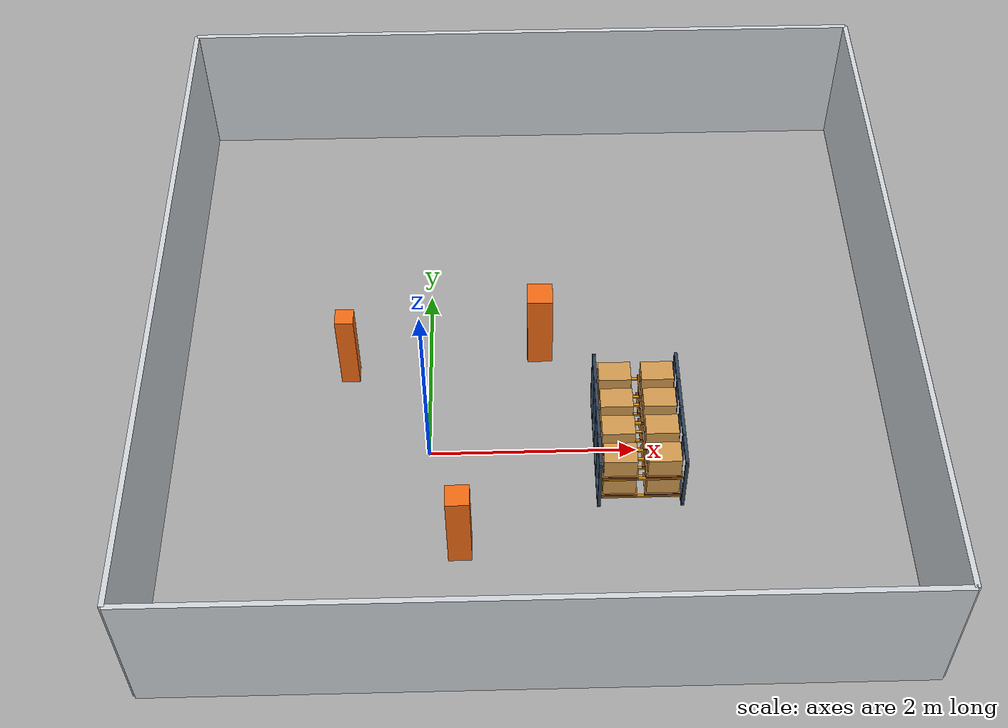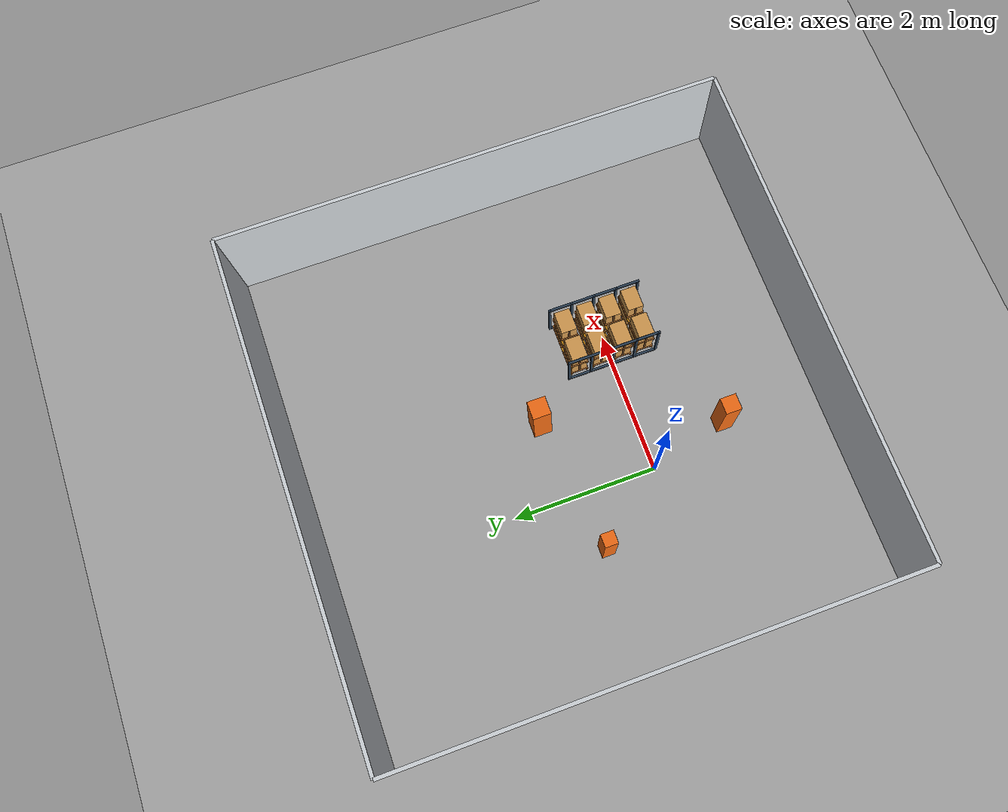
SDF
<?xml version="1.0"?>
<sdf version="1.9">
  <world name="warehouse">
    <physics name="warehouse_physics" type="dart">
      <!-- 200 Hz is sufficient for this slow mobile robot while leaving more
           CPU time for the RGB-D sensor and RViz under WSL. -->
      <max_step_size>0.005</max_step_size>
      <real_time_factor>1.0</real_time_factor>
      <dart>
        <collision_detector>bullet</collision_detector>
      </dart>
    </physics>

    <plugin filename="gz-sim-physics-system"
            name="gz::sim::systems::Physics"/>
    <plugin filename="gz-sim-user-commands-system"
            name="gz::sim::systems::UserCommands"/>
    <plugin filename="gz-sim-scene-broadcaster-system"
            name="gz::sim::systems::SceneBroadcaster"/>
    <plugin filename="gz-sim-sensors-system"
            name="gz::sim::systems::Sensors">
      <render_engine>ogre</render_engine>
    </plugin>
    <plugin filename="gz-sim-imu-system"
            name="gz::sim::systems::Imu"/>

    <!-- Use a deterministic startup view instead of restoring a stale camera
         aimed only at the rack. This view contains the robot at (0, 0) and
         the rack at (2, 0). -->
    <gui fullscreen="false">
      <plugin name="3D View" filename="GzScene3D">
        <gz-gui>
          <title>3D View</title>
          <property type="bool" key="showTitleBar">0</property>
          <property type="string" key="state">docked</property>
        </gz-gui>
        <engine>ogre2</engine>
        <scene>scene</scene>
        <camera_pose>-3.5 -3.5 3.0 0 0.45 0.75</camera_pose>
      </plugin>
      <plugin name="World control" filename="WorldControl">
        <gz-gui>
          <title>World control</title>
          <property type="bool" key="showTitleBar">0</property>
          <property type="bool" key="resizable">0</property>
          <property type="double" key="height">72</property>
          <property type="double" key="width">121</property>
          <property type="double" key="z">1</property>
          <property type="string" key="state">floating</property>
          <anchors target="3D View">
            <line own="left" target="left"/>
            <line own="bottom" target="bottom"/>
          </anchors>
        </gz-gui>
        <play_pause>1</play_pause>
        <step>1</step>
        <start_paused>0</start_paused>
      </plugin>
      <plugin name="World stats" filename="WorldStats">
        <gz-gui>
          <title>World stats</title>
          <property type="bool" key="showTitleBar">0</property>
          <property type="bool" key="resizable">0</property>
          <property type="double" key="height">110</property>
          <property type="double" key="width">290</property>
          <property type="double" key="z">1</property>
          <property type="string" key="state">floating</property>
          <anchors target="3D View">
            <line own="right" target="right"/>
            <line own="bottom" target="bottom"/>
          </anchors>
        </gz-gui>
        <sim_time>1</sim_time>
        <real_time>1</real_time>
        <real_time_factor>1</real_time_factor>
      </plugin>
      <plugin name="Entity tree" filename="EntityTree"/>
    </gui>

    <gravity>0 0 -9.81</gravity>

    <scene>
      <ambient>0.4 0.4 0.4 1</ambient>
      <background>0.7 0.7 0.7 1</background>
      <shadows>false</shadows>
    </scene>

    <light name="sun" type="directional">
      <cast_shadows>false</cast_shadows>
      <pose>0 0 10 0 0 0</pose>
      <diffuse>0.8 0.8 0.8 1</diffuse>
      <specular>0.2 0.2 0.2 1</specular>
      <direction>-0.5 0.1 -0.9</direction>
    </light>

    <model name="ground_plane">
      <static>true</static>
      <link name="ground_link">
        <collision name="ground_collision">
          <geometry>
            <plane>
              <normal>0 0 1</normal>
              <size>30 30</size>
            </plane>
          </geometry>
          <surface>
            <friction>
              <ode>
                <mu>1.0</mu>
                <mu2>1.0</mu2>
              </ode>
            </friction>
          </surface>
        </collision>
        <visual name="ground_visual">
          <geometry>
            <plane>
              <normal>0 0 1</normal>
              <size>30 30</size>
            </plane>
          </geometry>
          <material>
            <ambient>0.55 0.55 0.55 1</ambient>
            <diffuse>0.65 0.65 0.65 1</diffuse>
          </material>
        </visual>
      </link>
    </model>

    <!-- Physical warehouse boundary, kept as collision geometry for mapping. -->
    <model name="warehouse_walls">
      <static>true</static>
      <link name="walls_link">
        <collision name="west_wall_collision">
          <pose>-2.5 1.0 0.75 0 0 0</pose>
          <geometry><box><size>0.05 7.0 1.5</size></box></geometry>
        </collision>
        <visual name="west_wall_visual">
          <pose>-2.5 1.0 0.75 0 0 0</pose>
          <geometry><box><size>0.05 7.0 1.5</size></box></geometry>
          <material>
            <ambient>0.72 0.74 0.76 1</ambient>
            <diffuse>0.82 0.84 0.86 1</diffuse>
          </material>
        </visual>
        <collision name="east_wall_collision">
          <pose>4.5 1.0 0.75 0 0 0</pose>
          <geometry><box><size>0.05 7.0 1.5</size></box></geometry>
        </collision>
        <visual name="east_wall_visual">
          <pose>4.5 1.0 0.75 0 0 0</pose>
          <geometry><box><size>0.05 7.0 1.5</size></box></geometry>
          <material>
            <ambient>0.72 0.74 0.76 1</ambient>
            <diffuse>0.82 0.84 0.86 1</diffuse>
          </material>
        </visual>
        <collision name="south_wall_collision">
          <pose>1.0 -2.5 0.75 0 0 0</pose>
          <geometry><box><size>7.0 0.05 1.5</size></box></geometry>
        </collision>
        <visual name="south_wall_visual">
          <pose>1.0 -2.5 0.75 0 0 0</pose>
          <geometry><box><size>7.0 0.05 1.5</size></box></geometry>
          <material>
            <ambient>0.72 0.74 0.76 1</ambient>
            <diffuse>0.82 0.84 0.86 1</diffuse>
          </material>
        </visual>
        <collision name="north_wall_collision">
          <pose>1.0 4.5 0.75 0 0 0</pose>
          <geometry><box><size>7.0 0.05 1.5</size></box></geometry>
        </collision>
        <visual name="north_wall_visual">
          <pose>1.0 4.5 0.75 0 0 0</pose>
          <geometry><box><size>7.0 0.05 1.5</size></box></geometry>
          <material>
            <ambient>0.72 0.74 0.76 1</ambient>
            <diffuse>0.82 0.84 0.86 1</diffuse>
          </material>
        </visual>
      </link>
    </model>

    <model name="lidar_test_obstacles">
      <static>true</static>
      <link name="obstacles_link">
        <collision name="left_rear_obstacle_collision">
          <pose>-0.8 1.0 0.45 0 0 0</pose>
          <geometry><box><size>0.18 0.18 0.90</size></box></geometry>
        </collision>
        <visual name="left_rear_obstacle_visual">
          <pose>-0.8 1.0 0.45 0 0 0</pose>
          <geometry><box><size>0.18 0.18 0.90</size></box></geometry>
          <material>
            <ambient>0.85 0.32 0.05 1</ambient>
            <diffuse>0.95 0.42 0.08 1</diffuse>
          </material>
        </visual>
        <collision name="right_side_obstacle_collision">
          <pose>0.3 -1.1 0.45 0 0 0</pose>
          <geometry><box><size>0.22 0.22 0.90</size></box></geometry>
        </collision>
        <visual name="right_side_obstacle_visual">
          <pose>0.3 -1.1 0.45 0 0 0</pose>
          <geometry><box><size>0.22 0.22 0.90</size></box></geometry>
          <material>
            <ambient>0.85 0.32 0.05 1</ambient>
            <diffuse>0.95 0.42 0.08 1</diffuse>
          </material>
        </visual>
        <collision name="rack_side_obstacle_collision">
          <pose>1.1 1.25 0.45 0 0 0</pose>
          <geometry><box><size>0.25 0.25 0.90</size></box></geometry>
        </collision>
        <visual name="rack_side_obstacle_visual">
          <pose>1.1 1.25 0.45 0 0 0</pose>
          <geometry><box><size>0.25 0.25 0.90</size></box></geometry>
          <material>
            <ambient>0.85 0.32 0.05 1</ambient>
            <diffuse>0.95 0.42 0.08 1</diffuse>
          </material>
        </visual>
      </link>
    </model>

    <include>
      <uri>model://warehouse_rack_4x2_double</uri>
      <name>warehouse_rack</name>
      <pose>2.0 0 0 0 0 0</pose>
    </include>

    <!-- Front face: aisle is on the negative-X side of the rack. -->
    <include>
      <uri>model://warehouse_pallet_box</uri>
      <name>pallet_front_l1_c1</name>
      <pose>1.795 -0.480 0.091 0 0 0</pose>
    </include>
    <include>
      <uri>model://warehouse_pallet_box</uri>
      <name>pallet_front_l1_c2</name>
      <pose>1.795 -0.160 0.091 0 0 0</pose>
    </include>
    <include>
      <uri>model://warehouse_pallet_box</uri>
      <name>pallet_front_l1_c3</name>
      <pose>1.795 0.160 0.091 0 0 0</pose>
    </include>
    <include>
      <uri>model://warehouse_pallet_box</uri>
      <name>pallet_front_l1_c4</name>
      <pose>1.795 0.480 0.091 0 0 0</pose>
    </include>
    <include>
      <uri>model://warehouse_pallet_box</uri>
      <name>pallet_front_l2_c1</name>
      <pose>1.795 -0.480 0.371 0 0 0</pose>
    </include>
    <include>
      <uri>model://warehouse_pallet_box</uri>
      <name>pallet_front_l2_c2</name>
      <pose>1.795 -0.160 0.371 0 0 0</pose>
    </include>
    <include>
      <uri>model://warehouse_pallet_box</uri>
      <name>pallet_front_l2_c3</name>
      <pose>1.795 0.160 0.371 0 0 0</pose>
    </include>
    <include>
      <uri>model://warehouse_pallet_box</uri>
      <name>pallet_front_l2_c4</name>
      <pose>1.795 0.480 0.371 0 0 0</pose>
    </include>

    <!-- Rear face: aisle is on the positive-X side of the rack. -->
    <include>
      <uri>model://warehouse_pallet_box</uri>
      <name>pallet_rear_l1_c1</name>
      <pose>2.205 -0.480 0.091 0 0 0</pose>
    </include>
    <include>
      <uri>model://warehouse_pallet_box</uri>
      <name>pallet_rear_l1_c2</name>
      <pose>2.205 -0.160 0.091 0 0 0</pose>
    </include>
    <include>
      <uri>model://warehouse_pallet_box</uri>
      <name>pallet_rear_l1_c3</name>
      <pose>2.205 0.160 0.091 0 0 0</pose>
    </include>
    <include>
      <uri>model://warehouse_pallet_box</uri>
      <name>pallet_rear_l1_c4</name>
      <pose>2.205 0.480 0.091 0 0 0</pose>
    </include>
    <include>
      <uri>model://warehouse_pallet_box</uri>
      <name>pallet_rear_l2_c1</name>
      <pose>2.205 -0.480 0.371 0 0 0</pose>
    </include>
    <include>
      <uri>model://warehouse_pallet_box</uri>
      <name>pallet_rear_l2_c2</name>
      <pose>2.205 -0.160 0.371 0 0 0</pose>
    </include>
    <include>
      <uri>model://warehouse_pallet_box</uri>
      <name>pallet_rear_l2_c3</name>
      <pose>2.205 0.160 0.371 0 0 0</pose>
    </include>
    <include>
      <uri>model://warehouse_pallet_box</uri>
      <name>pallet_rear_l2_c4</name>
      <pose>2.205 0.480 0.371 0 0 0</pose>
    </include>
  </world>
</sdf>

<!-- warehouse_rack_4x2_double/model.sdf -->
<sdf version="1.9">
  <model name="warehouse_rack_4x2_double">
    <static>true</static>
    <link name="rack_frame">
      <collision name="front_post_1_collision">
        <pose>-0.3950 -0.6400 0.3400 0.0000 0.0000 0.0000</pose>
        <geometry>
          <box>
            <size>0.0300 0.0300 0.6800</size>
          </box>
        </geometry>
        <surface>
          <friction>
            <ode>
              <mu>0.8</mu>
              <mu2>0.8</mu2>
            </ode>
          </friction>
        </surface>
      </collision>
      <visual name="front_post_1_visual">
        <pose>-0.3950 -0.6400 0.3400 0.0000 0.0000 0.0000</pose>
        <geometry>
          <box>
            <size>0.0300 0.0300 0.6800</size>
          </box>
        </geometry>
        <material>
          <ambient>0.1800 0.2600 0.3400 1.0000</ambient>
          <diffuse>0.1800 0.2600 0.3400 1.0000</diffuse>
        </material>
      </visual>
      <collision name="rear_post_1_collision">
        <pose>0.3950 -0.6400 0.3400 0.0000 0.0000 0.0000</pose>
        <geometry>
          <box>
            <size>0.0300 0.0300 0.6800</size>
          </box>
        </geometry>
        <surface>
          <friction>
            <ode>
              <mu>0.8</mu>
              <mu2>0.8</mu2>
            </ode>
          </friction>
        </surface>
      </collision>
      <visual name="rear_post_1_visual">
        <pose>0.3950 -0.6400 0.3400 0.0000 0.0000 0.0000</pose>
        <geometry>
          <box>
            <size>0.0300 0.0300 0.6800</size>
          </box>
        </geometry>
        <material>
          <ambient>0.1800 0.2600 0.3400 1.0000</ambient>
          <diffuse>0.1800 0.2600 0.3400 1.0000</diffuse>
        </material>
      </visual>
      <collision name="front_post_2_collision">
        <pose>-0.3950 -0.3200 0.3400 0.0000 0.0000 0.0000</pose>
        <geometry>
          <box>
            <size>0.0300 0.0300 0.6800</size>
          </box>
        </geometry>
        <surface>
          <friction>
            <ode>
              <mu>0.8</mu>
              <mu2>0.8</mu2>
            </ode>
          </friction>
        </surface>
      </collision>
      <visual name="front_post_2_visual">
        <pose>-0.3950 -0.3200 0.3400 0.0000 0.0000 0.0000</pose>
        <geometry>
          <box>
            <size>0.0300 0.0300 0.6800</size>
          </box>
        </geometry>
        <material>
          <ambient>0.1800 0.2600 0.3400 1.0000</ambient>
          <diffuse>0.1800 0.2600 0.3400 1.0000</diffuse>
        </material>
      </visual>
      <collision name="rear_post_2_collision">
        <pose>0.3950 -0.3200 0.3400 0.0000 0.0000 0.0000</pose>
        <geometry>
          <box>
            <size>0.0300 0.0300 0.6800</size>
          </box>
        </geometry>
        <surface>
          <friction>
            <ode>
              <mu>0.8</mu>
              <mu2>0.8</mu2>
            </ode>
          </friction>
        </surface>
      </collision>
      <visual name="rear_post_2_visual">
        <pose>0.3950 -0.3200 0.3400 0.0000 0.0000 0.0000</pose>
        <geometry>
          <box>
            <size>0.0300 0.0300 0.6800</size>
          </box>
        </geometry>
        <material>
          <ambient>0.1800 0.2600 0.3400 1.0000</ambient>
          <diffuse>0.1800 0.2600 0.3400 1.0000</diffuse>
        </material>
      </visual>
      <collision name="front_post_3_collision">
        <pose>-0.3950 0.0000 0.3400 0.0000 0.0000 0.0000</pose>
        <geometry>
          <box>
            <size>0.0300 0.0300 0.6800</size>
          </box>
        </geometry>
        <surface>
          <friction>
            <ode>
              <mu>0.8</mu>
              <mu2>0.8</mu2>
            </ode>
          </friction>
        </surface>
      </collision>
      <visual name="front_post_3_visual">
        <pose>-0.3950 0.0000 0.3400 0.0000 0.0000 0.0000</pose>
        <geometry>
          <box>
            <size>0.0300 0.0300 0.6800</size>
          </box>
        </geometry>
        <material>
          <ambient>0.1800 0.2600 0.3400 1.0000</ambient>
          <diffuse>0.1800 0.2600 0.3400 1.0000</diffuse>
        </material>
      </visual>
      <collision name="rear_post_3_collision">
        <pose>0.3950 0.0000 0.3400 0.0000 0.0000 0.0000</pose>
        <geometry>
          <box>
            <size>0.0300 0.0300 0.6800</size>
          </box>
        </geometry>
        <surface>
          <friction>
            <ode>
              <mu>0.8</mu>
              <mu2>0.8</mu2>
            </ode>
          </friction>
        </surface>
      </collision>
      <visual name="rear_post_3_visual">
        <pose>0.3950 0.0000 0.3400 0.0000 0.0000 0.0000</pose>
        <geometry>
          <box>
            <size>0.0300 0.0300 0.6800</size>
          </box>
        </geometry>
        <material>
          <ambient>0.1800 0.2600 0.3400 1.0000</ambient>
          <diffuse>0.1800 0.2600 0.3400 1.0000</diffuse>
        </material>
      </visual>
      <collision name="front_post_4_collision">
        <pose>-0.3950 0.3200 0.3400 0.0000 0.0000 0.0000</pose>
        <geometry>
          <box>
            <size>0.0300 0.0300 0.6800</size>
          </box>
        </geometry>
        <surface>
          <friction>
            <ode>
              <mu>0.8</mu>
              <mu2>0.8</mu2>
            </ode>
          </friction>
        </surface>
      </collision>
      <visual name="front_post_4_visual">
        <pose>-0.3950 0.3200 0.3400 0.0000 0.0000 0.0000</pose>
        <geometry>
          <box>
            <size>0.0300 0.0300 0.6800</size>
          </box>
        </geometry>
        <material>
          <ambient>0.1800 0.2600 0.3400 1.0000</ambient>
          <diffuse>0.1800 0.2600 0.3400 1.0000</diffuse>
        </material>
      </visual>
      <collision name="rear_post_4_collision">
        <pose>0.3950 0.3200 0.3400 0.0000 0.0000 0.0000</pose>
        <geometry>
          <box>
            <size>0.0300 0.0300 0.6800</size>
          </box>
        </geometry>
        <surface>
          <friction>
            <ode>
              <mu>0.8</mu>
              <mu2>0.8</mu2>
            </ode>
          </friction>
        </surface>
      </collision>
      <visual name="rear_post_4_visual">
        <pose>0.3950 0.3200 0.3400 0.0000 0.0000 0.0000</pose>
        <geometry>
          <box>
            <size>0.0300 0.0300 0.6800</size>
          </box>
        </geometry>
        <material>
          <ambient>0.1800 0.2600 0.3400 1.0000</ambient>
          <diffuse>0.1800 0.2600 0.3400 1.0000</diffuse>
        </material>
      </visual>
      <collision name="front_post_5_collision">
        <pose>-0.3950 0.6400 0.3400 0.0000 0.0000 0.0000</pose>
        <geometry>
          <box>
            <size>0.0300 0.0300 0.6800</size>
          </box>
        </geometry>
        <surface>
          <friction>
            <ode>
              <mu>0.8</mu>
              <mu2>0.8</mu2>
            </ode>
          </friction>
        </surface>
      </collision>
      <visual name="front_post_5_visual">
        <pose>-0.3950 0.6400 0.3400 0.0000 0.0000 0.0000</pose>
        <geometry>
          <box>
            <size>0.0300 0.0300 0.6800</size>
          </box>
        </geometry>
        <material>
          <ambient>0.1800 0.2600 0.3400 1.0000</ambient>
          <diffuse>0.1800 0.2600 0.3400 1.0000</diffuse>
        </material>
      </visual>
      <collision name="rear_post_5_collision">
        <pose>0.3950 0.6400 0.3400 0.0000 0.0000 0.0000</pose>
        <geometry>
          <box>
            <size>0.0300 0.0300 0.6800</size>
          </box>
        </geometry>
        <surface>
          <friction>
            <ode>
              <mu>0.8</mu>
              <mu2>0.8</mu2>
            </ode>
          </friction>
        </surface>
      </collision>
      <visual name="rear_post_5_visual">
        <pose>0.3950 0.6400 0.3400 0.0000 0.0000 0.0000</pose>
        <geometry>
          <box>
            <size>0.0300 0.0300 0.6800</size>
          </box>
        </geometry>
        <material>
          <ambient>0.1800 0.2600 0.3400 1.0000</ambient>
          <diffuse>0.1800 0.2600 0.3400 1.0000</diffuse>
        </material>
      </visual>
      <collision name="front_bottom_crossbeam_collision">
        <pose>-0.3950 0.0000 0.0150 0.0000 0.0000 0.0000</pose>
        <geometry>
          <box>
            <size>0.0300 1.3100 0.0300</size>
          </box>
        </geometry>
        <surface>
          <friction>
            <ode>
              <mu>0.8</mu>
              <mu2>0.8</mu2>
            </ode>
          </friction>
        </surface>
      </collision>
      <visual name="front_bottom_crossbeam_visual">
        <pose>-0.3950 0.0000 0.0150 0.0000 0.0000 0.0000</pose>
        <geometry>
          <box>
            <size>0.0300 1.3100 0.0300</size>
          </box>
        </geometry>
        <material>
          <ambient>0.1800 0.2600 0.3400 1.0000</ambient>
          <diffuse>0.1800 0.2600 0.3400 1.0000</diffuse>
        </material>
      </visual>
      <collision name="front_top_crossbeam_collision">
        <pose>-0.3950 0.0000 0.6650 0.0000 0.0000 0.0000</pose>
        <geometry>
          <box>
            <size>0.0300 1.3100 0.0300</size>
          </box>
        </geometry>
        <surface>
          <friction>
            <ode>
              <mu>0.8</mu>
              <mu2>0.8</mu2>
            </ode>
          </friction>
        </surface>
      </collision>
      <visual name="front_top_crossbeam_visual">
        <pose>-0.3950 0.0000 0.6650 0.0000 0.0000 0.0000</pose>
        <geometry>
          <box>
            <size>0.0300 1.3100 0.0300</size>
          </box>
        </geometry>
        <material>
          <ambient>0.1800 0.2600 0.3400 1.0000</ambient>
          <diffuse>0.1800 0.2600 0.3400 1.0000</diffuse>
        </material>
      </visual>
      <collision name="rear_bottom_crossbeam_collision">
        <pose>0.3950 0.0000 0.0150 0.0000 0.0000 0.0000</pose>
        <geometry>
          <box>
            <size>0.0300 1.3100 0.0300</size>
          </box>
        </geometry>
        <surface>
          <friction>
            <ode>
              <mu>0.8</mu>
              <mu2>0.8</mu2>
            </ode>
          </friction>
        </surface>
      </collision>
      <visual name="rear_bottom_crossbeam_visual">
        <pose>0.3950 0.0000 0.0150 0.0000 0.0000 0.0000</pose>
        <geometry>
          <box>
            <size>0.0300 1.3100 0.0300</size>
          </box>
        </geometry>
        <material>
          <ambient>0.1800 0.2600 0.3400 1.0000</ambient>
          <diffuse>0.1800 0.2600 0.3400 1.0000</diffuse>
        </material>
      </visual>
      <collision name="rear_top_crossbeam_collision">
        <pose>0.3950 0.0000 0.6650 0.0000 0.0000 0.0000</pose>
        <geometry>
          <box>
            <size>0.0300 1.3100 0.0300</size>
          </box>
        </geometry>
        <surface>
          <friction>
            <ode>
              <mu>0.8</mu>
              <mu2>0.8</mu2>
            </ode>
          </friction>
        </surface>
      </collision>
      <visual name="rear_top_crossbeam_visual">
        <pose>0.3950 0.0000 0.6650 0.0000 0.0000 0.0000</pose>
        <geometry>
          <box>
            <size>0.0300 1.3100 0.0300</size>
          </box>
        </geometry>
        <material>
          <ambient>0.1800 0.2600 0.3400 1.0000</ambient>
          <diffuse>0.1800 0.2600 0.3400 1.0000</diffuse>
        </material>
      </visual>
      <collision name="level_1_bay_1_left_rail_collision">
        <pose>0.0000 -0.3700 0.0800 0.0000 0.0000 0.0000</pose>
        <geometry>
          <box>
            <size>0.7500 0.0250 0.0200</size>
          </box>
        </geometry>
        <surface>
          <friction>
            <ode>
              <mu>0.8</mu>
              <mu2>0.8</mu2>
            </ode>
          </friction>
        </surface>
      </collision>
      <visual name="level_1_bay_1_left_rail_visual">
        <pose>0.0000 -0.3700 0.0800 0.0000 0.0000 0.0000</pose>
        <geometry>
          <box>
            <size>0.7500 0.0250 0.0200</size>
          </box>
        </geometry>
        <material>
          <ambient>0.8600 0.5800 0.0800 1.0000</ambient>
          <diffuse>0.8600 0.5800 0.0800 1.0000</diffuse>
        </material>
      </visual>
      <collision name="level_1_bay_1_right_rail_collision">
        <pose>0.0000 -0.5900 0.0800 0.0000 0.0000 0.0000</pose>
        <geometry>
          <box>
            <size>0.7500 0.0250 0.0200</size>
          </box>
        </geometry>
        <surface>
          <friction>
            <ode>
              <mu>0.8</mu>
              <mu2>0.8</mu2>
            </ode>
          </friction>
        </surface>
      </collision>
      <visual name="level_1_bay_1_right_rail_visual">
        <pose>0.0000 -0.5900 0.0800 0.0000 0.0000 0.0000</pose>
        <geometry>
          <box>
            <size>0.7500 0.0250 0.0200</size>
          </box>
        </geometry>
        <material>
          <ambient>0.8600 0.5800 0.0800 1.0000</ambient>
          <diffuse>0.8600 0.5800 0.0800 1.0000</diffuse>
        </material>
      </visual>
      <collision name="level_1_bay_2_left_rail_collision">
        <pose>0.0000 -0.0500 0.0800 0.0000 0.0000 0.0000</pose>
        <geometry>
          <box>
            <size>0.7500 0.0250 0.0200</size>
          </box>
        </geometry>
        <surface>
          <friction>
            <ode>
              <mu>0.8</mu>
              <mu2>0.8</mu2>
            </ode>
          </friction>
        </surface>
      </collision>
      <visual name="level_1_bay_2_left_rail_visual">
        <pose>0.0000 -0.0500 0.0800 0.0000 0.0000 0.0000</pose>
        <geometry>
          <box>
            <size>0.7500 0.0250 0.0200</size>
          </box>
        </geometry>
        <material>
          <ambient>0.8600 0.5800 0.0800 1.0000</ambient>
          <diffuse>0.8600 0.5800 0.0800 1.0000</diffuse>
        </material>
      </visual>
      <collision name="level_1_bay_2_right_rail_collision">
        <pose>0.0000 -0.2700 0.0800 0.0000 0.0000 0.0000</pose>
        <geometry>
          <box>
            <size>0.7500 0.0250 0.0200</size>
          </box>
        </geometry>
        <surface>
          <friction>
            <ode>
              <mu>0.8</mu>
              <mu2>0.8</mu2>
            </ode>
          </friction>
        </surface>
      </collision>
      <visual name="level_1_bay_2_right_rail_visual">
        <pose>0.0000 -0.2700 0.0800 0.0000 0.0000 0.0000</pose>
        <geometry>
          <box>
            <size>0.7500 0.0250 0.0200</size>
          </box>
        </geometry>
        <material>
          <ambient>0.8600 0.5800 0.0800 1.0000</ambient>
          <diffuse>0.8600 0.5800 0.0800 1.0000</diffuse>
        </material>
      </visual>
      <collision name="level_1_bay_3_left_rail_collision">
        <pose>0.0000 0.2700 0.0800 0.0000 0.0000 0.0000</pose>
        <geometry>
          <box>
            <size>0.7500 0.0250 0.0200</size>
          </box>
        </geometry>
        <surface>
          <friction>
            <ode>
              <mu>0.8</mu>
              <mu2>0.8</mu2>
            </ode>
          </friction>
        </surface>
      </collision>
      <visual name="level_1_bay_3_left_rail_visual">
        <pose>0.0000 0.2700 0.0800 0.0000 0.0000 0.0000</pose>
        <geometry>
          <box>
            <size>0.7500 0.0250 0.0200</size>
          </box>
        </geometry>
        <material>
          <ambient>0.8600 0.5800 0.0800 1.0000</ambient>
          <diffuse>0.8600 0.5800 0.0800 1.0000</diffuse>
        </material>
      </visual>
      <collision name="level_1_bay_3_right_rail_collision">
        <pose>0.0000 0.0500 0.0800 0.0000 0.0000 0.0000</pose>
        <geometry>
          <box>
            <size>0.7500 0.0250 0.0200</size>
          </box>
        </geometry>
        <surface>
          <friction>
            <ode>
              <mu>0.8</mu>
              <mu2>0.8</mu2>
            </ode>
          </friction>
        </surface>
      </collision>
      <visual name="level_1_bay_3_right_rail_visual">
        <pose>0.0000 0.0500 0.0800 0.0000 0.0000 0.0000</pose>
        <geometry>
          <box>
            <size>0.7500 0.0250 0.0200</size>
          </box>
        </geometry>
        <material>
          <ambient>0.8600 0.5800 0.0800 1.0000</ambient>
          <diffuse>0.8600 0.5800 0.0800 1.0000</diffuse>
        </material>
      </visual>
      <collision name="level_1_bay_4_left_rail_collision">
        <pose>0.0000 0.5900 0.0800 0.0000 0.0000 0.0000</pose>
        <geometry>
          <box>
            <size>0.7500 0.0250 0.0200</size>
          </box>
        </geometry>
        <surface>
          <friction>
            <ode>
              <mu>0.8</mu>
              <mu2>0.8</mu2>
            </ode>
          </friction>
        </surface>
      </collision>
      <visual name="level_1_bay_4_left_rail_visual">
        <pose>0.0000 0.5900 0.0800 0.0000 0.0000 0.0000</pose>
        <geometry>
          <box>
            <size>0.7500 0.0250 0.0200</size>
          </box>
        </geometry>
        <material>
          <ambient>0.8600 0.5800 0.0800 1.0000</ambient>
          <diffuse>0.8600 0.5800 0.0800 1.0000</diffuse>
        </material>
      </visual>
      <collision name="level_1_bay_4_right_rail_collision">
        <pose>0.0000 0.3700 0.0800 0.0000 0.0000 0.0000</pose>
        <geometry>
          <box>
            <size>0.7500 0.0250 0.0200</size>
          </box>
        </geometry>
        <surface>
          <friction>
            <ode>
              <mu>0.8</mu>
              <mu2>0.8</mu2>
            </ode>
          </friction>
        </surface>
      </collision>
      <visual name="level_1_bay_4_right_rail_visual">
        <pose>0.0000 0.3700 0.0800 0.0000 0.0000 0.0000</pose>
        <geometry>
          <box>
            <size>0.7500 0.0250 0.0200</size>
          </box>
        </geometry>
        <material>
          <ambient>0.8600 0.5800 0.0800 1.0000</ambient>
          <diffuse>0.8600 0.5800 0.0800 1.0000</diffuse>
        </material>
      </visual>
      <collision name="level_2_bay_1_left_rail_collision">
        <pose>0.0000 -0.3700 0.3600 0.0000 0.0000 0.0000</pose>
        <geometry>
          <box>
            <size>0.7500 0.0250 0.0200</size>
          </box>
        </geometry>
        <surface>
          <friction>
            <ode>
              <mu>0.8</mu>
              <mu2>0.8</mu2>
            </ode>
          </friction>
        </surface>
      </collision>
      <visual name="level_2_bay_1_left_rail_visual">
        <pose>0.0000 -0.3700 0.3600 0.0000 0.0000 0.0000</pose>
        <geometry>
          <box>
            <size>0.7500 0.0250 0.0200</size>
          </box>
        </geometry>
        <material>
          <ambient>0.8600 0.5800 0.0800 1.0000</ambient>
          <diffuse>0.8600 0.5800 0.0800 1.0000</diffuse>
        </material>
      </visual>
      <collision name="level_2_bay_1_right_rail_collision">
        <pose>0.0000 -0.5900 0.3600 0.0000 0.0000 0.0000</pose>
        <geometry>
          <box>
            <size>0.7500 0.0250 0.0200</size>
          </box>
        </geometry>
        <surface>
          <friction>
            <ode>
              <mu>0.8</mu>
              <mu2>0.8</mu2>
            </ode>
          </friction>
        </surface>
      </collision>
      <visual name="level_2_bay_1_right_rail_visual">
        <pose>0.0000 -0.5900 0.3600 0.0000 0.0000 0.0000</pose>
        <geometry>
          <box>
            <size>0.7500 0.0250 0.0200</size>
          </box>
        </geometry>
        <material>
          <ambient>0.8600 0.5800 0.0800 1.0000</ambient>
          <diffuse>0.8600 0.5800 0.0800 1.0000</diffuse>
        </material>
      </visual>
      <collision name="level_2_bay_2_left_rail_collision">
        <pose>0.0000 -0.0500 0.3600 0.0000 0.0000 0.0000</pose>
        <geometry>
          <box>
            <size>0.7500 0.0250 0.0200</size>
          </box>
        </geometry>
        <surface>
          <friction>
            <ode>
              <mu>0.8</mu>
              <mu2>0.8</mu2>
            </ode>
          </friction>
        </surface>
      </collision>
      <visual name="level_2_bay_2_left_rail_visual">
        <pose>0.0000 -0.0500 0.3600 0.0000 0.0000 0.0000</pose>
        <geometry>
          <box>
            <size>0.7500 0.0250 0.0200</size>
          </box>
        </geometry>
        <material>
          <ambient>0.8600 0.5800 0.0800 1.0000</ambient>
          <diffuse>0.8600 0.5800 0.0800 1.0000</diffuse>
        </material>
      </visual>
      <collision name="level_2_bay_2_right_rail_collision">
        <pose>0.0000 -0.2700 0.3600 0.0000 0.0000 0.0000</pose>
        <geometry>
          <box>
            <size>0.7500 0.0250 0.0200</size>
          </box>
        </geometry>
        <surface>
          <friction>
            <ode>
              <mu>0.8</mu>
              <mu2>0.8</mu2>
            </ode>
          </friction>
        </surface>
      </collision>
      <visual name="level_2_bay_2_right_rail_visual">
        <pose>0.0000 -0.2700 0.3600 0.0000 0.0000 0.0000</pose>
        <geometry>
          <box>
            <size>0.7500 0.0250 0.0200</size>
          </box>
        </geometry>
        <material>
          <ambient>0.8600 0.5800 0.0800 1.0000</ambient>
          <diffuse>0.8600 0.5800 0.0800 1.0000</diffuse>
        </material>
      </visual>
      <collision name="level_2_bay_3_left_rail_collision">
        <pose>0.0000 0.2700 0.3600 0.0000 0.0000 0.0000</pose>
        <geometry>
          <box>
            <size>0.7500 0.0250 0.0200</size>
          </box>
        </geometry>
        <surface>
          <friction>
            <ode>
              <mu>0.8</mu>
              <mu2>0.8</mu2>
            </ode>
          </friction>
        </surface>
      </collision>
      <visual name="level_2_bay_3_left_rail_visual">
        <pose>0.0000 0.2700 0.3600 0.0000 0.0000 0.0000</pose>
        <geometry>
          <box>
            <size>0.7500 0.0250 0.0200</size>
          </box>
        </geometry>
        <material>
          <ambient>0.8600 0.5800 0.0800 1.0000</ambient>
          <diffuse>0.8600 0.5800 0.0800 1.0000</diffuse>
        </material>
      </visual>
      <collision name="level_2_bay_3_right_rail_collision">
        <pose>0.0000 0.0500 0.3600 0.0000 0.0000 0.0000</pose>
        <geometry>
          <box>
            <size>0.7500 0.0250 0.0200</size>
          </box>
        </geometry>
        <surface>
          <friction>
            <ode>
              <mu>0.8</mu>
              <mu2>0.8</mu2>
            </ode>
          </friction>
        </surface>
      </collision>
      <visual name="level_2_bay_3_right_rail_visual">
        <pose>0.0000 0.0500 0.3600 0.0000 0.0000 0.0000</pose>
        <geometry>
          <box>
            <size>0.7500 0.0250 0.0200</size>
          </box>
        </geometry>
        <material>
          <ambient>0.8600 0.5800 0.0800 1.0000</ambient>
          <diffuse>0.8600 0.5800 0.0800 1.0000</diffuse>
        </material>
      </visual>
      <collision name="level_2_bay_4_left_rail_collision">
        <pose>0.0000 0.5900 0.3600 0.0000 0.0000 0.0000</pose>
        <geometry>
          <box>
            <size>0.7500 0.0250 0.0200</size>
          </box>
        </geometry>
        <surface>
          <friction>
            <ode>
              <mu>0.8</mu>
              <mu2>0.8</mu2>
            </ode>
          </friction>
        </surface>
      </collision>
      <visual name="level_2_bay_4_left_rail_visual">
        <pose>0.0000 0.5900 0.3600 0.0000 0.0000 0.0000</pose>
        <geometry>
          <box>
            <size>0.7500 0.0250 0.0200</size>
          </box>
        </geometry>
        <material>
          <ambient>0.8600 0.5800 0.0800 1.0000</ambient>
          <diffuse>0.8600 0.5800 0.0800 1.0000</diffuse>
        </material>
      </visual>
      <collision name="level_2_bay_4_right_rail_collision">
        <pose>0.0000 0.3700 0.3600 0.0000 0.0000 0.0000</pose>
        <geometry>
          <box>
            <size>0.7500 0.0250 0.0200</size>
          </box>
        </geometry>
        <surface>
          <friction>
            <ode>
              <mu>0.8</mu>
              <mu2>0.8</mu2>
            </ode>
          </friction>
        </surface>
      </collision>
      <visual name="level_2_bay_4_right_rail_visual">
        <pose>0.0000 0.3700 0.3600 0.0000 0.0000 0.0000</pose>
        <geometry>
          <box>
            <size>0.7500 0.0250 0.0200</size>
          </box>
        </geometry>
        <material>
          <ambient>0.8600 0.5800 0.0800 1.0000</ambient>
          <diffuse>0.8600 0.5800 0.0800 1.0000</diffuse>
        </material>
      </visual>
    </link>
  </model>
</sdf>

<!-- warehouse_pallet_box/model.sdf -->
<sdf version="1.9">
  <model name="warehouse_pallet_box">
    <static>false</static>
    <allow_auto_disable>true</allow_auto_disable>

    <link name="loaded_pallet">
      <inertial>
        <pose>0 0 0.145 0 0 0</pose>
        <mass>1.0</mass>
        <inertia>
          <ixx>0.0638</ixx>
          <iyy>0.0903</iyy>
          <izz>0.0891</izz>
          <ixy>0</ixy>
          <ixz>0</ixz>
          <iyz>0</iyz>
        </inertia>
      </inertial>

      <!-- 10 mm deck, from z=25 to z=35 mm. -->
      <collision name="pallet_deck_collision">
        <pose>0 0 0.030 0 0 0</pose>
        <geometry>
          <box><size>0.340 0.250 0.010</size></box>
        </geometry>
        <surface>
          <friction>
            <ode><mu>0.8</mu><mu2>0.8</mu2></ode>
          </friction>
        </surface>
      </collision>
      <visual name="pallet_deck_visual">
        <pose>0 0 0.030 0 0 0</pose>
        <geometry>
          <box><size>0.340 0.250 0.010</size></box>
        </geometry>
        <material>
          <ambient>0.55 0.32 0.12 1</ambient>
          <diffuse>0.66 0.40 0.17 1</diffuse>
        </material>
      </visual>

      <!-- 25 mm runners at the outer edges; inner faces are y=+/-95 mm. -->
      <collision name="left_runner_collision">
        <pose>0 0.110 0.0125 0 0 0</pose>
        <geometry>
          <box><size>0.340 0.030 0.025</size></box>
        </geometry>
        <surface>
          <friction>
            <ode><mu>0.8</mu><mu2>0.8</mu2></ode>
          </friction>
        </surface>
      </collision>
      <visual name="left_runner_visual">
        <pose>0 0.110 0.0125 0 0 0</pose>
        <geometry>
          <box><size>0.340 0.030 0.025</size></box>
        </geometry>
        <material>
          <ambient>0.48 0.27 0.10 1</ambient>
          <diffuse>0.58 0.34 0.14 1</diffuse>
        </material>
      </visual>
      <collision name="right_runner_collision">
        <pose>0 -0.110 0.0125 0 0 0</pose>
        <geometry>
          <box><size>0.340 0.030 0.025</size></box>
        </geometry>
        <surface>
          <friction>
            <ode><mu>0.8</mu><mu2>0.8</mu2></ode>
          </friction>
        </surface>
      </collision>
      <visual name="right_runner_visual">
        <pose>0 -0.110 0.0125 0 0 0</pose>
        <geometry>
          <box><size>0.340 0.030 0.025</size></box>
        </geometry>
        <material>
          <ambient>0.48 0.27 0.10 1</ambient>
          <diffuse>0.58 0.34 0.14 1</diffuse>
        </material>
      </visual>

      <!-- Cargo: 310 mm deep, 220 mm wide and 220 mm high. -->
      <collision name="box_collision">
        <pose>0 0 0.145 0 0 0</pose>
        <geometry>
          <box><size>0.310 0.220 0.220</size></box>
        </geometry>
        <surface>
          <friction>
            <ode><mu>0.7</mu><mu2>0.7</mu2></ode>
          </friction>
        </surface>
      </collision>
      <visual name="box_visual">
        <pose>0 0 0.145 0 0 0</pose>
        <geometry>
          <box><size>0.310 0.220 0.220</size></box>
        </geometry>
        <material>
          <ambient>0.70 0.50 0.25 1</ambient>
          <diffuse>0.82 0.60 0.31 1</diffuse>
        </material>
      </visual>

      <!-- Dark bands make the box orientation visible from both aisles. -->
      <visual name="box_front_band_visual">
        <pose>-0.1551 0 0.145 0 0 0</pose>
        <geometry>
          <box><size>0.001 0.030 0.220</size></box>
        </geometry>
        <material>
          <ambient>0.24 0.14 0.06 1</ambient>
          <diffuse>0.30 0.18 0.08 1</diffuse>
        </material>
      </visual>
      <visual name="box_back_band_visual">
        <pose>0.1551 0 0.145 0 0 0</pose>
        <geometry>
          <box><size>0.001 0.030 0.220</size></box>
        </geometry>
        <material>
          <ambient>0.24 0.14 0.06 1</ambient>
          <diffuse>0.30 0.18 0.08 1</diffuse>
        </material>
      </visual>
    </link>
  </model>
</sdf>
